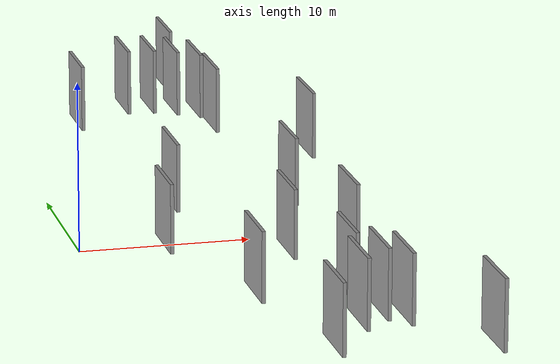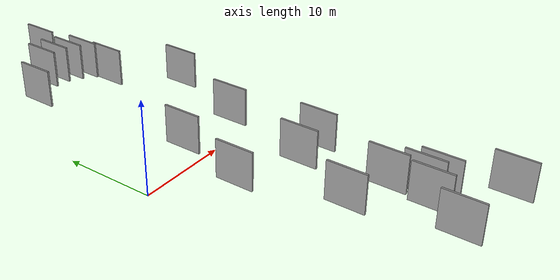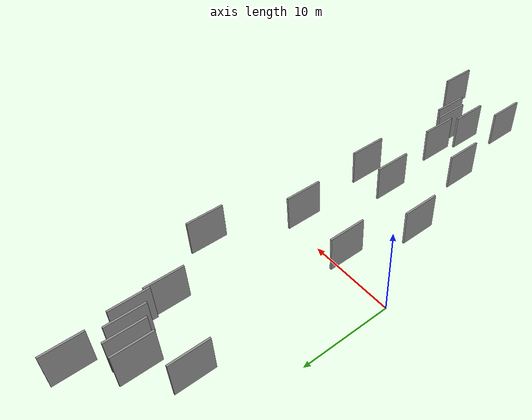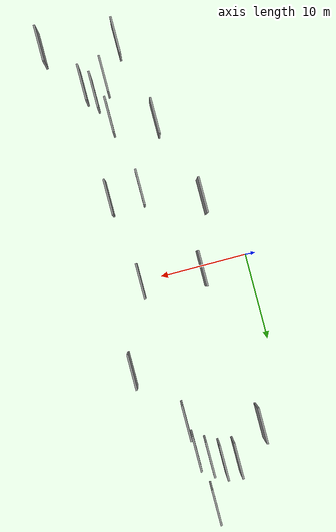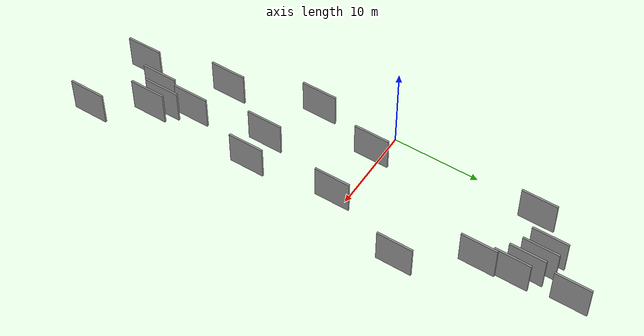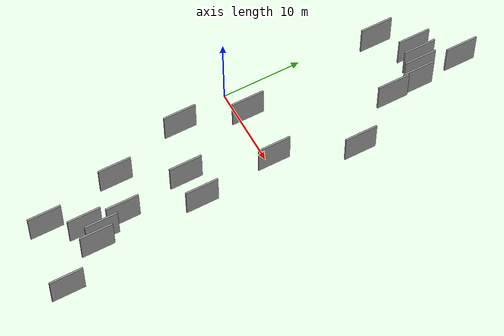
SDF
<sdf version="1.6">
 <world name="default">
  <scene>
   <sky><clouds><speed>12</speed></clouds></sky>
   <ambient>0.4 0.4 0.4 1</ambient>
   <background>0.7 0.7 0.7 1</background>
   <shadows>1</shadows>
  </scene>
  <gravity>0 0 -9.8066</gravity>
  <magnetic_field>6e-06 2.3e-05 -4.2e-05</magnetic_field>
  <physics default="0" name="default_physics" type="ode">
   <ode>
    <solver>
     <type>quick</type>
     <iters>10</iters>
     <sor>1.0</sor>
     <use_dynamic_moi_rescaling>0</use_dynamic_moi_rescaling>
    </solver>
    <constraints>
     <cfm>0</cfm>
     <erp>0.2</erp>
     <contact_max_correcting_vel>100</contact_max_correcting_vel>
     <contact_surface_layer>0.001</contact_surface_layer>
    </constraints>
   </ode>
   <max_step_size>0.004</max_step_size>
   <real_time_factor>1</real_time_factor>
   <real_time_update_rate>250</real_time_update_rate>
  </physics>
  <light name="sun" type="directional">
   <pose>0 0 10 0 0 0</pose>
   <diffuse>0.8 0.8 0.8 1</diffuse>
   <specular>0.2 0.2 0.2 1</specular>
   <attenuation>
    <range>1000</range>
    <constant>0.9</constant>
    <linear>0.01</linear>
    <quadratic>0.001</quadratic>
   </attenuation>
   <direction>-0.5 0.1 -0.9</direction>
  </light>
  <model name="grey_wall_1">
   <static>1</static>
   <pose>8.6026 21.1452 2.5 0.000000 0.000000 1.570796</pose>
   <link name="link">
    <pose>0 0 2.00 0 0 0</pose>
    <collision name="collision"><geometry><box><size>4.00 0.2 4.00</size></box></geometry></collision>
    <visual name="visual">
     <cast_shadows>0</cast_shadows>
     <geometry><box><size>4.00 0.2 4.00</size></box></geometry>
     <material>
      <script>
       <uri>model://grey_wall/materials/scripts</uri>
       <uri>model://grey_wall/materials/textures</uri>
       <name>vrc/grey_wall</name>
      </script>
     </material>
    </visual>
   </link>
  </model>
  <model name="grey_wall_2">
   <static>1</static>
   <pose>16.3442 -27.7545 2.5 0.000000 0.000000 1.570796</pose>
   <link name="link">
    <pose>0 0 2.00 0 0 0</pose>
    <collision name="collision"><geometry><box><size>4.00 0.2 4.00</size></box></geometry></collision>
    <visual name="visual">
     <cast_shadows>0</cast_shadows>
     <geometry><box><size>4.00 0.2 4.00</size></box></geometry>
     <material>
      <script>
       <uri>model://grey_wall/materials/scripts</uri>
       <uri>model://grey_wall/materials/textures</uri>
       <name>vrc/grey_wall</name>
      </script>
     </material>
    </visual>
   </link>
  </model>
  <model name="grey_wall_3">
   <static>1</static>
   <pose>11.4200 15.9923 2.5 0.000000 0.000000 1.570796</pose>
   <link name="link">
    <pose>0 0 2.00 0 0 0</pose>
    <collision name="collision"><geometry><box><size>4.00 0.2 4.00</size></box></geometry></collision>
    <visual name="visual">
     <cast_shadows>0</cast_shadows>
     <geometry><box><size>4.00 0.2 4.00</size></box></geometry>
     <material>
      <script>
       <uri>model://grey_wall/materials/scripts</uri>
       <uri>model://grey_wall/materials/textures</uri>
       <name>vrc/grey_wall</name>
      </script>
     </material>
    </visual>
   </link>
  </model>
  <model name="grey_wall_4">
   <static>1</static>
   <pose>11.9391 -21.4472 2.5 0.000000 0.000000 1.570796</pose>
   <link name="link">
    <pose>0 0 2.00 0 0 0</pose>
    <collision name="collision"><geometry><box><size>4.00 0.2 4.00</size></box></geometry></collision>
    <visual name="visual">
     <cast_shadows>0</cast_shadows>
     <geometry><box><size>4.00 0.2 4.00</size></box></geometry>
     <material>
      <script>
       <uri>model://grey_wall/materials/scripts</uri>
       <uri>model://grey_wall/materials/textures</uri>
       <name>vrc/grey_wall</name>
      </script>
     </material>
    </visual>
   </link>
  </model>
  <model name="grey_wall_5">
   <static>1</static>
   <pose>12.9472 -22.5260 2.5 0.000000 0.000000 1.570796</pose>
   <link name="link">
    <pose>0 0 2.00 0 0 0</pose>
    <collision name="collision"><geometry><box><size>4.00 0.2 4.00</size></box></geometry></collision>
    <visual name="visual">
     <cast_shadows>0</cast_shadows>
     <geometry><box><size>4.00 0.2 4.00</size></box></geometry>
     <material>
      <script>
       <uri>model://grey_wall/materials/scripts</uri>
       <uri>model://grey_wall/materials/textures</uri>
       <name>vrc/grey_wall</name>
      </script>
     </material>
    </visual>
   </link>
  </model>
  <model name="grey_wall_6">
   <static>1</static>
   <pose>11.1867 19.4636 2.5 0.000000 0.000000 1.570796</pose>
   <link name="link">
    <pose>0 0 2.00 0 0 0</pose>
    <collision name="collision"><geometry><box><size>4.00 0.2 4.00</size></box></geometry></collision>
    <visual name="visual">
     <cast_shadows>0</cast_shadows>
     <geometry><box><size>4.00 0.2 4.00</size></box></geometry>
     <material>
      <script>
       <uri>model://grey_wall/materials/scripts</uri>
       <uri>model://grey_wall/materials/textures</uri>
       <name>vrc/grey_wall</name>
      </script>
     </material>
    </visual>
   </link>
  </model>
  <model name="grey_wall_7">
   <static>1</static>
   <pose>6.2302 -17.0247 2.5 0.000000 0.000000 1.570796</pose>
   <link name="link">
    <pose>0 0 2.00 0 0 0</pose>
    <collision name="collision"><geometry><box><size>4.00 0.2 4.00</size></box></geometry></collision>
    <visual name="visual">
     <cast_shadows>0</cast_shadows>
     <geometry><box><size>4.00 0.2 4.00</size></box></geometry>
     <material>
      <script>
       <uri>model://grey_wall/materials/scripts</uri>
       <uri>model://grey_wall/materials/textures</uri>
       <name>vrc/grey_wall</name>
      </script>
     </material>
    </visual>
   </link>
  </model>
  <model name="grey_wall_8">
   <static>1</static>
   <pose>3.5296 18.3426 2.5 0.000000 0.000000 1.570796</pose>
   <link name="link">
    <pose>0 0 2.00 0 0 0</pose>
    <collision name="collision"><geometry><box><size>4.00 0.2 4.00</size></box></geometry></collision>
    <visual name="visual">
     <cast_shadows>0</cast_shadows>
     <geometry><box><size>4.00 0.2 4.00</size></box></geometry>
     <material>
      <script>
       <uri>model://grey_wall/materials/scripts</uri>
       <uri>model://grey_wall/materials/textures</uri>
       <name>vrc/grey_wall</name>
      </script>
     </material>
    </visual>
   </link>
  </model>
  <model name="grey_wall_9">
   <static>1</static>
   <pose>3.3957 -7.4346 2.5 0.000000 0.000000 1.570796</pose>
   <link name="link">
    <pose>0 0 2.00 0 0 0</pose>
    <collision name="collision"><geometry><box><size>4.00 0.2 4.00</size></box></geometry></collision>
    <visual name="visual">
     <cast_shadows>0</cast_shadows>
     <geometry><box><size>4.00 0.2 4.00</size></box></geometry>
     <material>
      <script>
       <uri>model://grey_wall/materials/scripts</uri>
       <uri>model://grey_wall/materials/textures</uri>
       <name>vrc/grey_wall</name>
      </script>
     </material>
    </visual>
   </link>
  </model>
  <model name="grey_wall_10">
   <static>1</static>
   <pose>5.4474 0.2281 2.5 0.000000 0.000000 1.570796</pose>
   <link name="link">
    <pose>0 0 2.00 0 0 0</pose>
    <collision name="collision"><geometry><box><size>4.00 0.2 4.00</size></box></geometry></collision>
    <visual name="visual">
     <cast_shadows>0</cast_shadows>
     <geometry><box><size>4.00 0.2 4.00</size></box></geometry>
     <material>
      <script>
       <uri>model://grey_wall/materials/scripts</uri>
       <uri>model://grey_wall/materials/textures</uri>
       <name>vrc/grey_wall</name>
      </script>
     </material>
    </visual>
   </link>
  </model>
  <model name="grey_wall_11">
   <static>1</static>
   <pose>9.9438 20.4334 2.5 0.000000 0.000000 1.570796</pose>
   <link name="link">
    <pose>0 0 2.00 0 0 0</pose>
    <collision name="collision"><geometry><box><size>4.00 0.2 4.00</size></box></geometry></collision>
    <visual name="visual">
     <cast_shadows>0</cast_shadows>
     <geometry><box><size>4.00 0.2 4.00</size></box></geometry>
     <material>
      <script>
       <uri>model://grey_wall/materials/scripts</uri>
       <uri>model://grey_wall/materials/textures</uri>
       <name>vrc/grey_wall</name>
      </script>
     </material>
    </visual>
   </link>
  </model>
  <model name="grey_wall_12">
   <static>1</static>
   <pose>10.9960 -18.4231 2.5 0.000000 0.000000 1.570796</pose>
   <link name="link">
    <pose>0 0 2.00 0 0 0</pose>
    <collision name="collision"><geometry><box><size>4.00 0.2 4.00</size></box></geometry></collision>
    <visual name="visual">
     <cast_shadows>0</cast_shadows>
     <geometry><box><size>4.00 0.2 4.00</size></box></geometry>
     <material>
      <script>
       <uri>model://grey_wall/materials/scripts</uri>
       <uri>model://grey_wall/materials/textures</uri>
       <name>vrc/grey_wall</name>
      </script>
     </material>
    </visual>
   </link>
  </model>
  <model name="grey_wall_13">
   <static>1</static>
   <pose>15.7169 9.1637 2.5 0.000000 0.000000 1.570796</pose>
   <link name="link">
    <pose>0 0 2.00 0 0 0</pose>
    <collision name="collision"><geometry><box><size>4.00 0.2 4.00</size></box></geometry></collision>
    <visual name="visual">
     <cast_shadows>0</cast_shadows>
     <geometry><box><size>4.00 0.2 4.00</size></box></geometry>
     <material>
      <script>
       <uri>model://grey_wall/materials/scripts</uri>
       <uri>model://grey_wall/materials/textures</uri>
       <name>vrc/grey_wall</name>
      </script>
     </material>
    </visual>
   </link>
  </model>
  <model name="grey_wall_14">
   <static>1</static>
   <pose>7.0278 21.3340 2.5 0.000000 0.000000 1.570796</pose>
   <link name="link">
    <pose>0 0 2.00 0 0 0</pose>
    <collision name="collision"><geometry><box><size>4.00 0.2 4.00</size></box></geometry></collision>
    <visual name="visual">
     <cast_shadows>0</cast_shadows>
     <geometry><box><size>4.00 0.2 4.00</size></box></geometry>
     <material>
      <script>
       <uri>model://grey_wall/materials/scripts</uri>
       <uri>model://grey_wall/materials/textures</uri>
       <name>vrc/grey_wall</name>
      </script>
     </material>
    </visual>
   </link>
  </model>
  <model name="grey_wall_15">
   <static>1</static>
   <pose>10.4401 -22.8148 2.5 0.000000 0.000000 1.570796</pose>
   <link name="link">
    <pose>0 0 2.00 0 0 0</pose>
    <collision name="collision"><geometry><box><size>4.00 0.2 4.00</size></box></geometry></collision>
    <visual name="visual">
     <cast_shadows>0</cast_shadows>
     <geometry><box><size>4.00 0.2 4.00</size></box></geometry>
     <material>
      <script>
       <uri>model://grey_wall/materials/scripts</uri>
       <uri>model://grey_wall/materials/textures</uri>
       <name>vrc/grey_wall</name>
      </script>
     </material>
    </visual>
   </link>
  </model>
  <model name="grey_wall_16">
   <static>1</static>
   <pose>9.7696 -9.9794 2.5 0.000000 0.000000 1.570796</pose>
   <link name="link">
    <pose>0 0 2.00 0 0 0</pose>
    <collision name="collision"><geometry><box><size>4.00 0.2 4.00</size></box></geometry></collision>
    <visual name="visual">
     <cast_shadows>0</cast_shadows>
     <geometry><box><size>4.00 0.2 4.00</size></box></geometry>
     <material>
      <script>
       <uri>model://grey_wall/materials/scripts</uri>
       <uri>model://grey_wall/materials/textures</uri>
       <name>vrc/grey_wall</name>
      </script>
     </material>
    </visual>
   </link>
  </model>
  <model name="grey_wall_17">
   <static>1</static>
   <pose>10.6031 25.5754 2.5 0.000000 0.000000 1.570796</pose>
   <link name="link">
    <pose>0 0 2.00 0 0 0</pose>
    <collision name="collision"><geometry><box><size>4.00 0.2 4.00</size></box></geometry></collision>
    <visual name="visual">
     <cast_shadows>0</cast_shadows>
     <geometry><box><size>4.00 0.2 4.00</size></box></geometry>
     <material>
      <script>
       <uri>model://grey_wall/materials/scripts</uri>
       <uri>model://grey_wall/materials/textures</uri>
       <name>vrc/grey_wall</name>
      </script>
     </material>
    </visual>
   </link>
  </model>
  <model name="grey_wall_18">
   <static>1</static>
   <pose>8.1453 -26.5182 2.5 0.000000 0.000000 1.570796</pose>
   <link name="link">
    <pose>0 0 2.00 0 0 0</pose>
    <collision name="collision"><geometry><box><size>4.00 0.2 4.00</size></box></geometry></collision>
    <visual name="visual">
     <cast_shadows>0</cast_shadows>
     <geometry><box><size>4.00 0.2 4.00</size></box></geometry>
     <material>
      <script>
       <uri>model://grey_wall/materials/scripts</uri>
       <uri>model://grey_wall/materials/textures</uri>
       <name>vrc/grey_wall</name>
      </script>
     </material>
    </visual>
   </link>
  </model>
  <model name="grey_wall_19">
   <static>1</static>
   <pose>13.3531 -9.8064 2.5 0.000000 0.000000 1.570796</pose>
   <link name="link">
    <pose>0 0 2.00 0 0 0</pose>
    <collision name="collision"><geometry><box><size>4.00 0.2 4.00</size></box></geometry></collision>
    <visual name="visual">
     <cast_shadows>0</cast_shadows>
     <geometry><box><size>4.00 0.2 4.00</size></box></geometry>
     <material>
      <script>
       <uri>model://grey_wall/materials/scripts</uri>
       <uri>model://grey_wall/materials/textures</uri>
       <name>vrc/grey_wall</name>
      </script>
     </material>
    </visual>
   </link>
  </model>
  <model name="grey_wall_20">
   <static>1</static>
   <pose>12.3140 -0.1206 2.5 0.000000 0.000000 1.570796</pose>
   <link name="link">
    <pose>0 0 2.00 0 0 0</pose>
    <collision name="collision"><geometry><box><size>4.00 0.2 4.00</size></box></geometry></collision>
    <visual name="visual">
     <cast_shadows>0</cast_shadows>
     <geometry><box><size>4.00 0.2 4.00</size></box></geometry>
     <material>
      <script>
       <uri>model://grey_wall/materials/scripts</uri>
       <uri>model://grey_wall/materials/textures</uri>
       <name>vrc/grey_wall</name>
      </script>
     </material>
    </visual>
   </link>
  </model>
 </world>
</sdf>
